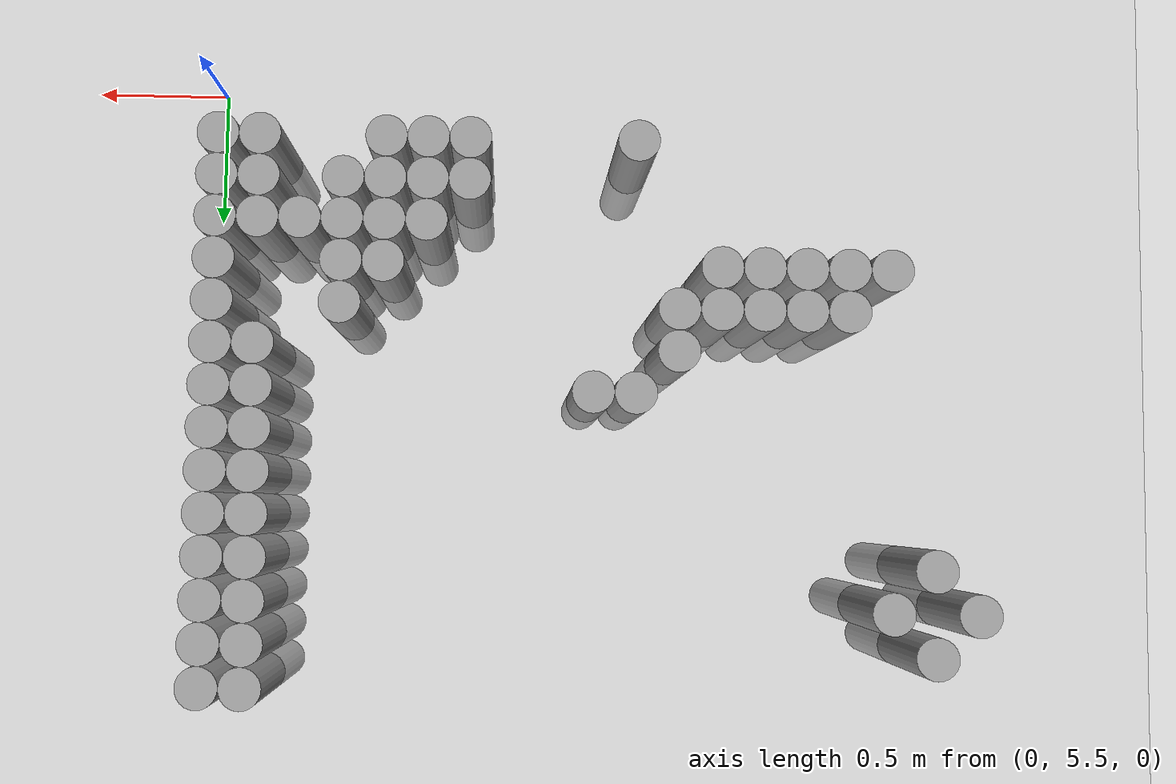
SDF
<sdf version="1.6">
 <world name="default">
  <model name="ground_plane">
   <static>1</static>
   <static>1</static>
   <link name="link">
    <collision name="collision">
     <geometry><plane><normal>0 0 1</normal><size>100 100</size></plane></geometry>
     <surface><friction><ode><mu>100</mu><mu2>50</mu2></ode></friction></surface>
    </collision>
    <visual name="visual">
     <cast_shadows>0</cast_shadows>
     <geometry><plane><normal>0 0 1</normal><size>100 100</size></plane></geometry>
     <material>
      <script><uri>file://media/materials/scripts/gazebo.material</uri><name>Gazebo/Grey</name></script>
     </material>
    </visual>
   </link>
  </model>
  <model name="unit_cylinder_162">
   <static>1</static>
   <pose>-2.775000 7.425000 0.000000 0.000000 0.000000 0.000000</pose>
   <link name="link">
    <inertial>
     <mass>1</mass>
     <inertia><ixx>0.145833</ixx><ixy>0</ixy><ixz>0</ixz><iyy>0.145833</iyy><iyz>0</iyz><izz>0.125</izz></inertia>
    </inertial>
    <collision name="collision">
     <geometry><cylinder><radius>0.075000</radius><length>1</length></cylinder></geometry>
    </collision>
    <visual name="visual">
     <geometry><cylinder><radius>0.075000</radius><length>1</length></cylinder></geometry>
     <material>
      <script><name>Gazebo/Grey</name><uri>file://media/materials/scripts/gazebo.material</uri></script>
     </material>
    </visual>
   </link>
  </model>
  <model name="unit_cylinder_165">
   <static>1</static>
   <pose>-2.625000 7.275000 0.000000 0.000000 0.000000 0.000000</pose>
   <link name="link">
    <inertial>
     <mass>1</mass>
     <inertia><ixx>0.145833</ixx><ixy>0</ixy><ixz>0</ixz><iyy>0.145833</iyy><iyz>0</iyz><izz>0.125</izz></inertia>
    </inertial>
    <collision name="collision">
     <geometry><cylinder><radius>0.075000</radius><length>1</length></cylinder></geometry>
    </collision>
    <visual name="visual">
     <geometry><cylinder><radius>0.075000</radius><length>1</length></cylinder></geometry>
     <material>
      <script><name>Gazebo/Grey</name><uri>file://media/materials/scripts/gazebo.material</uri></script>
     </material>
    </visual>
   </link>
  </model>
  <model name="unit_cylinder_166">
   <static>1</static>
   <pose>-2.625000 7.575000 0.000000 0.000000 0.000000 0.000000</pose>
   <link name="link">
    <inertial>
     <mass>1</mass>
     <inertia><ixx>0.145833</ixx><ixy>0</ixy><ixz>0</ixz><iyy>0.145833</iyy><iyz>0</iyz><izz>0.125</izz></inertia>
    </inertial>
    <collision name="collision">
     <geometry><cylinder><radius>0.075000</radius><length>1</length></cylinder></geometry>
    </collision>
    <visual name="visual">
     <geometry><cylinder><radius>0.075000</radius><length>1</length></cylinder></geometry>
     <material>
      <script><name>Gazebo/Grey</name><uri>file://media/materials/scripts/gazebo.material</uri></script>
     </material>
    </visual>
   </link>
  </model>
  <model name="unit_cylinder_170">
   <static>1</static>
   <pose>-2.475000 6.225000 0.000000 0.000000 0.000000 0.000000</pose>
   <link name="link">
    <inertial>
     <mass>1</mass>
     <inertia><ixx>0.145833</ixx><ixy>0</ixy><ixz>0</ixz><iyy>0.145833</iyy><iyz>0</iyz><izz>0.125</izz></inertia>
    </inertial>
    <collision name="collision">
     <geometry><cylinder><radius>0.075000</radius><length>1</length></cylinder></geometry>
    </collision>
    <visual name="visual">
     <geometry><cylinder><radius>0.075000</radius><length>1</length></cylinder></geometry>
     <material>
      <script><name>Gazebo/Grey</name><uri>file://media/materials/scripts/gazebo.material</uri></script>
     </material>
    </visual>
   </link>
  </model>
  <model name="unit_cylinder_171">
   <static>1</static>
   <pose>-2.475000 7.425000 0.000000 0.000000 0.000000 0.000000</pose>
   <link name="link">
    <inertial>
     <mass>1</mass>
     <inertia><ixx>0.145833</ixx><ixy>0</ixy><ixz>0</ixz><iyy>0.145833</iyy><iyz>0</iyz><izz>0.125</izz></inertia>
    </inertial>
    <collision name="collision">
     <geometry><cylinder><radius>0.075000</radius><length>1</length></cylinder></geometry>
    </collision>
    <visual name="visual">
     <geometry><cylinder><radius>0.075000</radius><length>1</length></cylinder></geometry>
     <material>
      <script><name>Gazebo/Grey</name><uri>file://media/materials/scripts/gazebo.material</uri></script>
     </material>
    </visual>
   </link>
  </model>
  <model name="unit_cylinder_174">
   <static>1</static>
   <pose>-2.325000 6.225000 0.000000 0.000000 0.000000 0.000000</pose>
   <link name="link">
    <inertial>
     <mass>1</mass>
     <inertia><ixx>0.145833</ixx><ixy>0</ixy><ixz>0</ixz><iyy>0.145833</iyy><iyz>0</iyz><izz>0.125</izz></inertia>
    </inertial>
    <collision name="collision">
     <geometry><cylinder><radius>0.075000</radius><length>1</length></cylinder></geometry>
    </collision>
    <visual name="visual">
     <geometry><cylinder><radius>0.075000</radius><length>1</length></cylinder></geometry>
     <material>
      <script><name>Gazebo/Grey</name><uri>file://media/materials/scripts/gazebo.material</uri></script>
     </material>
    </visual>
   </link>
  </model>
  <model name="unit_cylinder_175">
   <static>1</static>
   <pose>-2.325000 6.375000 0.000000 0.000000 0.000000 0.000000</pose>
   <link name="link">
    <inertial>
     <mass>1</mass>
     <inertia><ixx>0.145833</ixx><ixy>0</ixy><ixz>0</ixz><iyy>0.145833</iyy><iyz>0</iyz><izz>0.125</izz></inertia>
    </inertial>
    <collision name="collision">
     <geometry><cylinder><radius>0.075000</radius><length>1</length></cylinder></geometry>
    </collision>
    <visual name="visual">
     <geometry><cylinder><radius>0.075000</radius><length>1</length></cylinder></geometry>
     <material>
      <script><name>Gazebo/Grey</name><uri>file://media/materials/scripts/gazebo.material</uri></script>
     </material>
    </visual>
   </link>
  </model>
  <model name="unit_cylinder_176">
   <static>1</static>
   <pose>-2.175000 6.225000 0.000000 0.000000 0.000000 0.000000</pose>
   <link name="link">
    <inertial>
     <mass>1</mass>
     <inertia><ixx>0.145833</ixx><ixy>0</ixy><ixz>0</ixz><iyy>0.145833</iyy><iyz>0</iyz><izz>0.125</izz></inertia>
    </inertial>
    <collision name="collision">
     <geometry><cylinder><radius>0.075000</radius><length>1</length></cylinder></geometry>
    </collision>
    <visual name="visual">
     <geometry><cylinder><radius>0.075000</radius><length>1</length></cylinder></geometry>
     <material>
      <script><name>Gazebo/Grey</name><uri>file://media/materials/scripts/gazebo.material</uri></script>
     </material>
    </visual>
   </link>
  </model>
  <model name="unit_cylinder_177">
   <static>1</static>
   <pose>-2.175000 6.375000 0.000000 0.000000 0.000000 0.000000</pose>
   <link name="link">
    <inertial>
     <mass>1</mass>
     <inertia><ixx>0.145833</ixx><ixy>0</ixy><ixz>0</ixz><iyy>0.145833</iyy><iyz>0</iyz><izz>0.125</izz></inertia>
    </inertial>
    <collision name="collision">
     <geometry><cylinder><radius>0.075000</radius><length>1</length></cylinder></geometry>
    </collision>
    <visual name="visual">
     <geometry><cylinder><radius>0.075000</radius><length>1</length></cylinder></geometry>
     <material>
      <script><name>Gazebo/Grey</name><uri>file://media/materials/scripts/gazebo.material</uri></script>
     </material>
    </visual>
   </link>
  </model>
  <model name="unit_cylinder_180">
   <static>1</static>
   <pose>-2.025000 6.225000 0.000000 0.000000 0.000000 0.000000</pose>
   <link name="link">
    <inertial>
     <mass>1</mass>
     <inertia><ixx>0.145833</ixx><ixy>0</ixy><ixz>0</ixz><iyy>0.145833</iyy><iyz>0</iyz><izz>0.125</izz></inertia>
    </inertial>
    <collision name="collision">
     <geometry><cylinder><radius>0.075000</radius><length>1</length></cylinder></geometry>
    </collision>
    <visual name="visual">
     <geometry><cylinder><radius>0.075000</radius><length>1</length></cylinder></geometry>
     <material>
      <script><name>Gazebo/Grey</name><uri>file://media/materials/scripts/gazebo.material</uri></script>
     </material>
    </visual>
   </link>
  </model>
  <model name="unit_cylinder_181">
   <static>1</static>
   <pose>-2.025000 6.375000 0.000000 0.000000 0.000000 0.000000</pose>
   <link name="link">
    <inertial>
     <mass>1</mass>
     <inertia><ixx>0.145833</ixx><ixy>0</ixy><ixz>0</ixz><iyy>0.145833</iyy><iyz>0</iyz><izz>0.125</izz></inertia>
    </inertial>
    <collision name="collision">
     <geometry><cylinder><radius>0.075000</radius><length>1</length></cylinder></geometry>
    </collision>
    <visual name="visual">
     <geometry><cylinder><radius>0.075000</radius><length>1</length></cylinder></geometry>
     <material>
      <script><name>Gazebo/Grey</name><uri>file://media/materials/scripts/gazebo.material</uri></script>
     </material>
    </visual>
   </link>
  </model>
  <model name="unit_cylinder_183">
   <static>1</static>
   <pose>-1.875000 6.225000 0.000000 0.000000 0.000000 0.000000</pose>
   <link name="link">
    <inertial>
     <mass>1</mass>
     <inertia><ixx>0.145833</ixx><ixy>0</ixy><ixz>0</ixz><iyy>0.145833</iyy><iyz>0</iyz><izz>0.125</izz></inertia>
    </inertial>
    <collision name="collision">
     <geometry><cylinder><radius>0.075000</radius><length>1</length></cylinder></geometry>
    </collision>
    <visual name="visual">
     <geometry><cylinder><radius>0.075000</radius><length>1</length></cylinder></geometry>
     <material>
      <script><name>Gazebo/Grey</name><uri>file://media/materials/scripts/gazebo.material</uri></script>
     </material>
    </visual>
   </link>
  </model>
  <model name="unit_cylinder_184">
   <static>1</static>
   <pose>-1.875000 6.375000 0.000000 0.000000 0.000000 0.000000</pose>
   <link name="link">
    <inertial>
     <mass>1</mass>
     <inertia><ixx>0.145833</ixx><ixy>0</ixy><ixz>0</ixz><iyy>0.145833</iyy><iyz>0</iyz><izz>0.125</izz></inertia>
    </inertial>
    <collision name="collision">
     <geometry><cylinder><radius>0.075000</radius><length>1</length></cylinder></geometry>
    </collision>
    <visual name="visual">
     <geometry><cylinder><radius>0.075000</radius><length>1</length></cylinder></geometry>
     <material>
      <script><name>Gazebo/Grey</name><uri>file://media/materials/scripts/gazebo.material</uri></script>
     </material>
    </visual>
   </link>
  </model>
  <model name="unit_cylinder_185">
   <static>1</static>
   <pose>-1.725000 6.375000 0.000000 0.000000 0.000000 0.000000</pose>
   <link name="link">
    <inertial>
     <mass>1</mass>
     <inertia><ixx>0.145833</ixx><ixy>0</ixy><ixz>0</ixz><iyy>0.145833</iyy><iyz>0</iyz><izz>0.125</izz></inertia>
    </inertial>
    <collision name="collision">
     <geometry><cylinder><radius>0.075000</radius><length>1</length></cylinder></geometry>
    </collision>
    <visual name="visual">
     <geometry><cylinder><radius>0.075000</radius><length>1</length></cylinder></geometry>
     <material>
      <script><name>Gazebo/Grey</name><uri>file://media/materials/scripts/gazebo.material</uri></script>
     </material>
    </visual>
   </link>
  </model>
  <model name="unit_cylinder_186">
   <static>1</static>
   <pose>-1.725000 6.525000 0.000000 0.000000 0.000000 0.000000</pose>
   <link name="link">
    <inertial>
     <mass>1</mass>
     <inertia><ixx>0.145833</ixx><ixy>0</ixy><ixz>0</ixz><iyy>0.145833</iyy><iyz>0</iyz><izz>0.125</izz></inertia>
    </inertial>
    <collision name="collision">
     <geometry><cylinder><radius>0.075000</radius><length>1</length></cylinder></geometry>
    </collision>
    <visual name="visual">
     <geometry><cylinder><radius>0.075000</radius><length>1</length></cylinder></geometry>
     <material>
      <script><name>Gazebo/Grey</name><uri>file://media/materials/scripts/gazebo.material</uri></script>
     </material>
    </visual>
   </link>
  </model>
  <model name="unit_cylinder_188">
   <static>1</static>
   <pose>-1.575000 5.775000 0.000000 0.000000 0.000000 0.000000</pose>
   <link name="link">
    <inertial>
     <mass>1</mass>
     <inertia><ixx>0.145833</ixx><ixy>0</ixy><ixz>0</ixz><iyy>0.145833</iyy><iyz>0</iyz><izz>0.125</izz></inertia>
    </inertial>
    <collision name="collision">
     <geometry><cylinder><radius>0.075000</radius><length>1</length></cylinder></geometry>
    </collision>
    <visual name="visual">
     <geometry><cylinder><radius>0.075000</radius><length>1</length></cylinder></geometry>
     <material>
      <script><name>Gazebo/Grey</name><uri>file://media/materials/scripts/gazebo.material</uri></script>
     </material>
    </visual>
   </link>
  </model>
  <model name="unit_cylinder_189">
   <static>1</static>
   <pose>-1.575000 6.675000 0.000000 0.000000 0.000000 0.000000</pose>
   <link name="link">
    <inertial>
     <mass>1</mass>
     <inertia><ixx>0.145833</ixx><ixy>0</ixy><ixz>0</ixz><iyy>0.145833</iyy><iyz>0</iyz><izz>0.125</izz></inertia>
    </inertial>
    <collision name="collision">
     <geometry><cylinder><radius>0.075000</radius><length>1</length></cylinder></geometry>
    </collision>
    <visual name="visual">
     <geometry><cylinder><radius>0.075000</radius><length>1</length></cylinder></geometry>
     <material>
      <script><name>Gazebo/Grey</name><uri>file://media/materials/scripts/gazebo.material</uri></script>
     </material>
    </visual>
   </link>
  </model>
  <model name="unit_cylinder_194">
   <static>1</static>
   <pose>-1.425000 6.675000 0.000000 0.000000 0.000000 0.000000</pose>
   <link name="link">
    <inertial>
     <mass>1</mass>
     <inertia><ixx>0.145833</ixx><ixy>0</ixy><ixz>0</ixz><iyy>0.145833</iyy><iyz>0</iyz><izz>0.125</izz></inertia>
    </inertial>
    <collision name="collision">
     <geometry><cylinder><radius>0.075000</radius><length>1</length></cylinder></geometry>
    </collision>
    <visual name="visual">
     <geometry><cylinder><radius>0.075000</radius><length>1</length></cylinder></geometry>
     <material>
      <script><name>Gazebo/Grey</name><uri>file://media/materials/scripts/gazebo.material</uri></script>
     </material>
    </visual>
   </link>
  </model>
  <model name="unit_cylinder_198">
   <static>1</static>
   <pose>-0.975000 5.775000 0.000000 0.000000 0.000000 0.000000</pose>
   <link name="link">
    <inertial>
     <mass>1</mass>
     <inertia><ixx>0.145833</ixx><ixy>0</ixy><ixz>0</ixz><iyy>0.145833</iyy><iyz>0</iyz><izz>0.125</izz></inertia>
    </inertial>
    <collision name="collision">
     <geometry><cylinder><radius>0.075000</radius><length>1</length></cylinder></geometry>
    </collision>
    <visual name="visual">
     <geometry><cylinder><radius>0.075000</radius><length>1</length></cylinder></geometry>
     <material>
      <script><name>Gazebo/Grey</name><uri>file://media/materials/scripts/gazebo.material</uri></script>
     </material>
    </visual>
   </link>
  </model>
  <model name="unit_cylinder_199">
   <static>1</static>
   <pose>-0.975000 5.925000 0.000000 0.000000 0.000000 0.000000</pose>
   <link name="link">
    <inertial>
     <mass>1</mass>
     <inertia><ixx>0.145833</ixx><ixy>0</ixy><ixz>0</ixz><iyy>0.145833</iyy><iyz>0</iyz><izz>0.125</izz></inertia>
    </inertial>
    <collision name="collision">
     <geometry><cylinder><radius>0.075000</radius><length>1</length></cylinder></geometry>
    </collision>
    <visual name="visual">
     <geometry><cylinder><radius>0.075000</radius><length>1</length></cylinder></geometry>
     <material>
      <script><name>Gazebo/Grey</name><uri>file://media/materials/scripts/gazebo.material</uri></script>
     </material>
    </visual>
   </link>
  </model>
  <model name="unit_cylinder_205">
   <static>1</static>
   <pose>-0.825000 5.775000 0.000000 0.000000 0.000000 0.000000</pose>
   <link name="link">
    <inertial>
     <mass>1</mass>
     <inertia><ixx>0.145833</ixx><ixy>0</ixy><ixz>0</ixz><iyy>0.145833</iyy><iyz>0</iyz><izz>0.125</izz></inertia>
    </inertial>
    <collision name="collision">
     <geometry><cylinder><radius>0.075000</radius><length>1</length></cylinder></geometry>
    </collision>
    <visual name="visual">
     <geometry><cylinder><radius>0.075000</radius><length>1</length></cylinder></geometry>
     <material>
      <script><name>Gazebo/Grey</name><uri>file://media/materials/scripts/gazebo.material</uri></script>
     </material>
    </visual>
   </link>
  </model>
  <model name="unit_cylinder_206">
   <static>1</static>
   <pose>-0.825000 5.925000 0.000000 0.000000 0.000000 0.000000</pose>
   <link name="link">
    <inertial>
     <mass>1</mass>
     <inertia><ixx>0.145833</ixx><ixy>0</ixy><ixz>0</ixz><iyy>0.145833</iyy><iyz>0</iyz><izz>0.125</izz></inertia>
    </inertial>
    <collision name="collision">
     <geometry><cylinder><radius>0.075000</radius><length>1</length></cylinder></geometry>
    </collision>
    <visual name="visual">
     <geometry><cylinder><radius>0.075000</radius><length>1</length></cylinder></geometry>
     <material>
      <script><name>Gazebo/Grey</name><uri>file://media/materials/scripts/gazebo.material</uri></script>
     </material>
    </visual>
   </link>
  </model>
  <model name="unit_cylinder_207">
   <static>1</static>
   <pose>-0.825000 6.075000 0.000000 0.000000 0.000000 0.000000</pose>
   <link name="link">
    <inertial>
     <mass>1</mass>
     <inertia><ixx>0.145833</ixx><ixy>0</ixy><ixz>0</ixz><iyy>0.145833</iyy><iyz>0</iyz><izz>0.125</izz></inertia>
    </inertial>
    <collision name="collision">
     <geometry><cylinder><radius>0.075000</radius><length>1</length></cylinder></geometry>
    </collision>
    <visual name="visual">
     <geometry><cylinder><radius>0.075000</radius><length>1</length></cylinder></geometry>
     <material>
      <script><name>Gazebo/Grey</name><uri>file://media/materials/scripts/gazebo.material</uri></script>
     </material>
    </visual>
   </link>
  </model>
  <model name="unit_cylinder_215">
   <static>1</static>
   <pose>-0.675000 5.775000 0.000000 0.000000 0.000000 0.000000</pose>
   <link name="link">
    <inertial>
     <mass>1</mass>
     <inertia><ixx>0.145833</ixx><ixy>0</ixy><ixz>0</ixz><iyy>0.145833</iyy><iyz>0</iyz><izz>0.125</izz></inertia>
    </inertial>
    <collision name="collision">
     <geometry><cylinder><radius>0.075000</radius><length>1</length></cylinder></geometry>
    </collision>
    <visual name="visual">
     <geometry><cylinder><radius>0.075000</radius><length>1</length></cylinder></geometry>
     <material>
      <script><name>Gazebo/Grey</name><uri>file://media/materials/scripts/gazebo.material</uri></script>
     </material>
    </visual>
   </link>
  </model>
  <model name="unit_cylinder_216">
   <static>1</static>
   <pose>-0.675000 5.925000 0.000000 0.000000 0.000000 0.000000</pose>
   <link name="link">
    <inertial>
     <mass>1</mass>
     <inertia><ixx>0.145833</ixx><ixy>0</ixy><ixz>0</ixz><iyy>0.145833</iyy><iyz>0</iyz><izz>0.125</izz></inertia>
    </inertial>
    <collision name="collision">
     <geometry><cylinder><radius>0.075000</radius><length>1</length></cylinder></geometry>
    </collision>
    <visual name="visual">
     <geometry><cylinder><radius>0.075000</radius><length>1</length></cylinder></geometry>
     <material>
      <script><name>Gazebo/Grey</name><uri>file://media/materials/scripts/gazebo.material</uri></script>
     </material>
    </visual>
   </link>
  </model>
  <model name="unit_cylinder_217">
   <static>1</static>
   <pose>-0.675000 6.075000 0.000000 0.000000 0.000000 0.000000</pose>
   <link name="link">
    <inertial>
     <mass>1</mass>
     <inertia><ixx>0.145833</ixx><ixy>0</ixy><ixz>0</ixz><iyy>0.145833</iyy><iyz>0</iyz><izz>0.125</izz></inertia>
    </inertial>
    <collision name="collision">
     <geometry><cylinder><radius>0.075000</radius><length>1</length></cylinder></geometry>
    </collision>
    <visual name="visual">
     <geometry><cylinder><radius>0.075000</radius><length>1</length></cylinder></geometry>
     <material>
      <script><name>Gazebo/Grey</name><uri>file://media/materials/scripts/gazebo.material</uri></script>
     </material>
    </visual>
   </link>
  </model>
  <model name="unit_cylinder_218">
   <static>1</static>
   <pose>-0.675000 6.225000 0.000000 0.000000 0.000000 0.000000</pose>
   <link name="link">
    <inertial>
     <mass>1</mass>
     <inertia><ixx>0.145833</ixx><ixy>0</ixy><ixz>0</ixz><iyy>0.145833</iyy><iyz>0</iyz><izz>0.125</izz></inertia>
    </inertial>
    <collision name="collision">
     <geometry><cylinder><radius>0.075000</radius><length>1</length></cylinder></geometry>
    </collision>
    <visual name="visual">
     <geometry><cylinder><radius>0.075000</radius><length>1</length></cylinder></geometry>
     <material>
      <script><name>Gazebo/Grey</name><uri>file://media/materials/scripts/gazebo.material</uri></script>
     </material>
    </visual>
   </link>
  </model>
  <model name="unit_cylinder_224">
   <static>1</static>
   <pose>-0.525000 5.925000 0.000000 0.000000 0.000000 0.000000</pose>
   <link name="link">
    <inertial>
     <mass>1</mass>
     <inertia><ixx>0.145833</ixx><ixy>0</ixy><ixz>0</ixz><iyy>0.145833</iyy><iyz>0</iyz><izz>0.125</izz></inertia>
    </inertial>
    <collision name="collision">
     <geometry><cylinder><radius>0.075000</radius><length>1</length></cylinder></geometry>
    </collision>
    <visual name="visual">
     <geometry><cylinder><radius>0.075000</radius><length>1</length></cylinder></geometry>
     <material>
      <script><name>Gazebo/Grey</name><uri>file://media/materials/scripts/gazebo.material</uri></script>
     </material>
    </visual>
   </link>
  </model>
  <model name="unit_cylinder_225">
   <static>1</static>
   <pose>-0.525000 6.075000 0.000000 0.000000 0.000000 0.000000</pose>
   <link name="link">
    <inertial>
     <mass>1</mass>
     <inertia><ixx>0.145833</ixx><ixy>0</ixy><ixz>0</ixz><iyy>0.145833</iyy><iyz>0</iyz><izz>0.125</izz></inertia>
    </inertial>
    <collision name="collision">
     <geometry><cylinder><radius>0.075000</radius><length>1</length></cylinder></geometry>
    </collision>
    <visual name="visual">
     <geometry><cylinder><radius>0.075000</radius><length>1</length></cylinder></geometry>
     <material>
      <script><name>Gazebo/Grey</name><uri>file://media/materials/scripts/gazebo.material</uri></script>
     </material>
    </visual>
   </link>
  </model>
  <model name="unit_cylinder_226">
   <static>1</static>
   <pose>-0.525000 6.225000 0.000000 0.000000 0.000000 0.000000</pose>
   <link name="link">
    <inertial>
     <mass>1</mass>
     <inertia><ixx>0.145833</ixx><ixy>0</ixy><ixz>0</ixz><iyy>0.145833</iyy><iyz>0</iyz><izz>0.125</izz></inertia>
    </inertial>
    <collision name="collision">
     <geometry><cylinder><radius>0.075000</radius><length>1</length></cylinder></geometry>
    </collision>
    <visual name="visual">
     <geometry><cylinder><radius>0.075000</radius><length>1</length></cylinder></geometry>
     <material>
      <script><name>Gazebo/Grey</name><uri>file://media/materials/scripts/gazebo.material</uri></script>
     </material>
    </visual>
   </link>
  </model>
  <model name="unit_cylinder_227">
   <static>1</static>
   <pose>-0.525000 6.375000 0.000000 0.000000 0.000000 0.000000</pose>
   <link name="link">
    <inertial>
     <mass>1</mass>
     <inertia><ixx>0.145833</ixx><ixy>0</ixy><ixz>0</ixz><iyy>0.145833</iyy><iyz>0</iyz><izz>0.125</izz></inertia>
    </inertial>
    <collision name="collision">
     <geometry><cylinder><radius>0.075000</radius><length>1</length></cylinder></geometry>
    </collision>
    <visual name="visual">
     <geometry><cylinder><radius>0.075000</radius><length>1</length></cylinder></geometry>
     <material>
      <script><name>Gazebo/Grey</name><uri>file://media/materials/scripts/gazebo.material</uri></script>
     </material>
    </visual>
   </link>
  </model>
  <model name="unit_cylinder_234">
   <static>1</static>
   <pose>-0.375000 6.075000 0.000000 0.000000 0.000000 0.000000</pose>
   <link name="link">
    <inertial>
     <mass>1</mass>
     <inertia><ixx>0.145833</ixx><ixy>0</ixy><ixz>0</ixz><iyy>0.145833</iyy><iyz>0</iyz><izz>0.125</izz></inertia>
    </inertial>
    <collision name="collision">
     <geometry><cylinder><radius>0.075000</radius><length>1</length></cylinder></geometry>
    </collision>
    <visual name="visual">
     <geometry><cylinder><radius>0.075000</radius><length>1</length></cylinder></geometry>
     <material>
      <script><name>Gazebo/Grey</name><uri>file://media/materials/scripts/gazebo.material</uri></script>
     </material>
    </visual>
   </link>
  </model>
  <model name="unit_cylinder_242">
   <static>1</static>
   <pose>-0.225000 5.775000 0.000000 0.000000 0.000000 0.000000</pose>
   <link name="link">
    <inertial>
     <mass>1</mass>
     <inertia><ixx>0.145833</ixx><ixy>0</ixy><ixz>0</ixz><iyy>0.145833</iyy><iyz>0</iyz><izz>0.125</izz></inertia>
    </inertial>
    <collision name="collision">
     <geometry><cylinder><radius>0.075000</radius><length>1</length></cylinder></geometry>
    </collision>
    <visual name="visual">
     <geometry><cylinder><radius>0.075000</radius><length>1</length></cylinder></geometry>
     <material>
      <script><name>Gazebo/Grey</name><uri>file://media/materials/scripts/gazebo.material</uri></script>
     </material>
    </visual>
   </link>
  </model>
  <model name="unit_cylinder_243">
   <static>1</static>
   <pose>-0.225000 5.925000 0.000000 0.000000 0.000000 0.000000</pose>
   <link name="link">
    <inertial>
     <mass>1</mass>
     <inertia><ixx>0.145833</ixx><ixy>0</ixy><ixz>0</ixz><iyy>0.145833</iyy><iyz>0</iyz><izz>0.125</izz></inertia>
    </inertial>
    <collision name="collision">
     <geometry><cylinder><radius>0.075000</radius><length>1</length></cylinder></geometry>
    </collision>
    <visual name="visual">
     <geometry><cylinder><radius>0.075000</radius><length>1</length></cylinder></geometry>
     <material>
      <script><name>Gazebo/Grey</name><uri>file://media/materials/scripts/gazebo.material</uri></script>
     </material>
    </visual>
   </link>
  </model>
  <model name="unit_cylinder_244">
   <static>1</static>
   <pose>-0.225000 6.075000 0.000000 0.000000 0.000000 0.000000</pose>
   <link name="link">
    <inertial>
     <mass>1</mass>
     <inertia><ixx>0.145833</ixx><ixy>0</ixy><ixz>0</ixz><iyy>0.145833</iyy><iyz>0</iyz><izz>0.125</izz></inertia>
    </inertial>
    <collision name="collision">
     <geometry><cylinder><radius>0.075000</radius><length>1</length></cylinder></geometry>
    </collision>
    <visual name="visual">
     <geometry><cylinder><radius>0.075000</radius><length>1</length></cylinder></geometry>
     <material>
      <script><name>Gazebo/Grey</name><uri>file://media/materials/scripts/gazebo.material</uri></script>
     </material>
    </visual>
   </link>
  </model>
  <model name="unit_cylinder_245">
   <static>1</static>
   <pose>-0.225000 6.525000 0.000000 0.000000 0.000000 0.000000</pose>
   <link name="link">
    <inertial>
     <mass>1</mass>
     <inertia><ixx>0.145833</ixx><ixy>0</ixy><ixz>0</ixz><iyy>0.145833</iyy><iyz>0</iyz><izz>0.125</izz></inertia>
    </inertial>
    <collision name="collision">
     <geometry><cylinder><radius>0.075000</radius><length>1</length></cylinder></geometry>
    </collision>
    <visual name="visual">
     <geometry><cylinder><radius>0.075000</radius><length>1</length></cylinder></geometry>
     <material>
      <script><name>Gazebo/Grey</name><uri>file://media/materials/scripts/gazebo.material</uri></script>
     </material>
    </visual>
   </link>
  </model>
  <model name="unit_cylinder_246">
   <static>1</static>
   <pose>-0.225000 6.675000 0.000000 0.000000 0.000000 0.000000</pose>
   <link name="link">
    <inertial>
     <mass>1</mass>
     <inertia><ixx>0.145833</ixx><ixy>0</ixy><ixz>0</ixz><iyy>0.145833</iyy><iyz>0</iyz><izz>0.125</izz></inertia>
    </inertial>
    <collision name="collision">
     <geometry><cylinder><radius>0.075000</radius><length>1</length></cylinder></geometry>
    </collision>
    <visual name="visual">
     <geometry><cylinder><radius>0.075000</radius><length>1</length></cylinder></geometry>
     <material>
      <script><name>Gazebo/Grey</name><uri>file://media/materials/scripts/gazebo.material</uri></script>
     </material>
    </visual>
   </link>
  </model>
  <model name="unit_cylinder_247">
   <static>1</static>
   <pose>-0.225000 6.825000 0.000000 0.000000 0.000000 0.000000</pose>
   <link name="link">
    <inertial>
     <mass>1</mass>
     <inertia><ixx>0.145833</ixx><ixy>0</ixy><ixz>0</ixz><iyy>0.145833</iyy><iyz>0</iyz><izz>0.125</izz></inertia>
    </inertial>
    <collision name="collision">
     <geometry><cylinder><radius>0.075000</radius><length>1</length></cylinder></geometry>
    </collision>
    <visual name="visual">
     <geometry><cylinder><radius>0.075000</radius><length>1</length></cylinder></geometry>
     <material>
      <script><name>Gazebo/Grey</name><uri>file://media/materials/scripts/gazebo.material</uri></script>
     </material>
    </visual>
   </link>
  </model>
  <model name="unit_cylinder_248">
   <static>1</static>
   <pose>-0.225000 6.975000 0.000000 0.000000 0.000000 0.000000</pose>
   <link name="link">
    <inertial>
     <mass>1</mass>
     <inertia><ixx>0.145833</ixx><ixy>0</ixy><ixz>0</ixz><iyy>0.145833</iyy><iyz>0</iyz><izz>0.125</izz></inertia>
    </inertial>
    <collision name="collision">
     <geometry><cylinder><radius>0.075000</radius><length>1</length></cylinder></geometry>
    </collision>
    <visual name="visual">
     <geometry><cylinder><radius>0.075000</radius><length>1</length></cylinder></geometry>
     <material>
      <script><name>Gazebo/Grey</name><uri>file://media/materials/scripts/gazebo.material</uri></script>
     </material>
    </visual>
   </link>
  </model>
  <model name="unit_cylinder_249">
   <static>1</static>
   <pose>-0.225000 7.125000 0.000000 0.000000 0.000000 0.000000</pose>
   <link name="link">
    <inertial>
     <mass>1</mass>
     <inertia><ixx>0.145833</ixx><ixy>0</ixy><ixz>0</ixz><iyy>0.145833</iyy><iyz>0</iyz><izz>0.125</izz></inertia>
    </inertial>
    <collision name="collision">
     <geometry><cylinder><radius>0.075000</radius><length>1</length></cylinder></geometry>
    </collision>
    <visual name="visual">
     <geometry><cylinder><radius>0.075000</radius><length>1</length></cylinder></geometry>
     <material>
      <script><name>Gazebo/Grey</name><uri>file://media/materials/scripts/gazebo.material</uri></script>
     </material>
    </visual>
   </link>
  </model>
  <model name="unit_cylinder_250">
   <static>1</static>
   <pose>-0.225000 7.275000 0.000000 0.000000 0.000000 0.000000</pose>
   <link name="link">
    <inertial>
     <mass>1</mass>
     <inertia><ixx>0.145833</ixx><ixy>0</ixy><ixz>0</ixz><iyy>0.145833</iyy><iyz>0</iyz><izz>0.125</izz></inertia>
    </inertial>
    <collision name="collision">
     <geometry><cylinder><radius>0.075000</radius><length>1</length></cylinder></geometry>
    </collision>
    <visual name="visual">
     <geometry><cylinder><radius>0.075000</radius><length>1</length></cylinder></geometry>
     <material>
      <script><name>Gazebo/Grey</name><uri>file://media/materials/scripts/gazebo.material</uri></script>
     </material>
    </visual>
   </link>
  </model>
  <model name="unit_cylinder_251">
   <static>1</static>
   <pose>-0.225000 7.425000 0.000000 0.000000 0.000000 0.000000</pose>
   <link name="link">
    <inertial>
     <mass>1</mass>
     <inertia><ixx>0.145833</ixx><ixy>0</ixy><ixz>0</ixz><iyy>0.145833</iyy><iyz>0</iyz><izz>0.125</izz></inertia>
    </inertial>
    <collision name="collision">
     <geometry><cylinder><radius>0.075000</radius><length>1</length></cylinder></geometry>
    </collision>
    <visual name="visual">
     <geometry><cylinder><radius>0.075000</radius><length>1</length></cylinder></geometry>
     <material>
      <script><name>Gazebo/Grey</name><uri>file://media/materials/scripts/gazebo.material</uri></script>
     </material>
    </visual>
   </link>
  </model>
  <model name="unit_cylinder_252">
   <static>1</static>
   <pose>-0.225000 7.575000 0.000000 0.000000 0.000000 0.000000</pose>
   <link name="link">
    <inertial>
     <mass>1</mass>
     <inertia><ixx>0.145833</ixx><ixy>0</ixy><ixz>0</ixz><iyy>0.145833</iyy><iyz>0</iyz><izz>0.125</izz></inertia>
    </inertial>
    <collision name="collision">
     <geometry><cylinder><radius>0.075000</radius><length>1</length></cylinder></geometry>
    </collision>
    <visual name="visual">
     <geometry><cylinder><radius>0.075000</radius><length>1</length></cylinder></geometry>
     <material>
      <script><name>Gazebo/Grey</name><uri>file://media/materials/scripts/gazebo.material</uri></script>
     </material>
    </visual>
   </link>
  </model>
  <model name="unit_cylinder_253">
   <static>1</static>
   <pose>-0.225000 7.725000 0.000000 0.000000 0.000000 0.000000</pose>
   <link name="link">
    <inertial>
     <mass>1</mass>
     <inertia><ixx>0.145833</ixx><ixy>0</ixy><ixz>0</ixz><iyy>0.145833</iyy><iyz>0</iyz><izz>0.125</izz></inertia>
    </inertial>
    <collision name="collision">
     <geometry><cylinder><radius>0.075000</radius><length>1</length></cylinder></geometry>
    </collision>
    <visual name="visual">
     <geometry><cylinder><radius>0.075000</radius><length>1</length></cylinder></geometry>
     <material>
      <script><name>Gazebo/Grey</name><uri>file://media/materials/scripts/gazebo.material</uri></script>
     </material>
    </visual>
   </link>
  </model>
  <model name="unit_cylinder_264">
   <static>1</static>
   <pose>-0.075000 5.775000 0.000000 0.000000 0.000000 0.000000</pose>
   <link name="link">
    <inertial>
     <mass>1</mass>
     <inertia><ixx>0.145833</ixx><ixy>0</ixy><ixz>0</ixz><iyy>0.145833</iyy><iyz>0</iyz><izz>0.125</izz></inertia>
    </inertial>
    <collision name="collision">
     <geometry><cylinder><radius>0.075000</radius><length>1</length></cylinder></geometry>
    </collision>
    <visual name="visual">
     <geometry><cylinder><radius>0.075000</radius><length>1</length></cylinder></geometry>
     <material>
      <script><name>Gazebo/Grey</name><uri>file://media/materials/scripts/gazebo.material</uri></script>
     </material>
    </visual>
   </link>
  </model>
  <model name="unit_cylinder_265">
   <static>1</static>
   <pose>-0.075000 5.925000 0.000000 0.000000 0.000000 0.000000</pose>
   <link name="link">
    <inertial>
     <mass>1</mass>
     <inertia><ixx>0.145833</ixx><ixy>0</ixy><ixz>0</ixz><iyy>0.145833</iyy><iyz>0</iyz><izz>0.125</izz></inertia>
    </inertial>
    <collision name="collision">
     <geometry><cylinder><radius>0.075000</radius><length>1</length></cylinder></geometry>
    </collision>
    <visual name="visual">
     <geometry><cylinder><radius>0.075000</radius><length>1</length></cylinder></geometry>
     <material>
      <script><name>Gazebo/Grey</name><uri>file://media/materials/scripts/gazebo.material</uri></script>
     </material>
    </visual>
   </link>
  </model>
  <model name="unit_cylinder_266">
   <static>1</static>
   <pose>-0.075000 6.075000 0.000000 0.000000 0.000000 0.000000</pose>
   <link name="link">
    <inertial>
     <mass>1</mass>
     <inertia><ixx>0.145833</ixx><ixy>0</ixy><ixz>0</ixz><iyy>0.145833</iyy><iyz>0</iyz><izz>0.125</izz></inertia>
    </inertial>
    <collision name="collision">
     <geometry><cylinder><radius>0.075000</radius><length>1</length></cylinder></geometry>
    </collision>
    <visual name="visual">
     <geometry><cylinder><radius>0.075000</radius><length>1</length></cylinder></geometry>
     <material>
      <script><name>Gazebo/Grey</name><uri>file://media/materials/scripts/gazebo.material</uri></script>
     </material>
    </visual>
   </link>
  </model>
  <model name="unit_cylinder_267">
   <static>1</static>
   <pose>-0.075000 6.225000 0.000000 0.000000 0.000000 0.000000</pose>
   <link name="link">
    <inertial>
     <mass>1</mass>
     <inertia><ixx>0.145833</ixx><ixy>0</ixy><ixz>0</ixz><iyy>0.145833</iyy><iyz>0</iyz><izz>0.125</izz></inertia>
    </inertial>
    <collision name="collision">
     <geometry><cylinder><radius>0.075000</radius><length>1</length></cylinder></geometry>
    </collision>
    <visual name="visual">
     <geometry><cylinder><radius>0.075000</radius><length>1</length></cylinder></geometry>
     <material>
      <script><name>Gazebo/Grey</name><uri>file://media/materials/scripts/gazebo.material</uri></script>
     </material>
    </visual>
   </link>
  </model>
  <model name="unit_cylinder_268">
   <static>1</static>
   <pose>-0.075000 6.375000 0.000000 0.000000 0.000000 0.000000</pose>
   <link name="link">
    <inertial>
     <mass>1</mass>
     <inertia><ixx>0.145833</ixx><ixy>0</ixy><ixz>0</ixz><iyy>0.145833</iyy><iyz>0</iyz><izz>0.125</izz></inertia>
    </inertial>
    <collision name="collision">
     <geometry><cylinder><radius>0.075000</radius><length>1</length></cylinder></geometry>
    </collision>
    <visual name="visual">
     <geometry><cylinder><radius>0.075000</radius><length>1</length></cylinder></geometry>
     <material>
      <script><name>Gazebo/Grey</name><uri>file://media/materials/scripts/gazebo.material</uri></script>
     </material>
    </visual>
   </link>
  </model>
  <model name="unit_cylinder_269">
   <static>1</static>
   <pose>-0.075000 6.525000 0.000000 0.000000 0.000000 0.000000</pose>
   <link name="link">
    <inertial>
     <mass>1</mass>
     <inertia><ixx>0.145833</ixx><ixy>0</ixy><ixz>0</ixz><iyy>0.145833</iyy><iyz>0</iyz><izz>0.125</izz></inertia>
    </inertial>
    <collision name="collision">
     <geometry><cylinder><radius>0.075000</radius><length>1</length></cylinder></geometry>
    </collision>
    <visual name="visual">
     <geometry><cylinder><radius>0.075000</radius><length>1</length></cylinder></geometry>
     <material>
      <script><name>Gazebo/Grey</name><uri>file://media/materials/scripts/gazebo.material</uri></script>
     </material>
    </visual>
   </link>
  </model>
  <model name="unit_cylinder_270">
   <static>1</static>
   <pose>-0.075000 6.675000 0.000000 0.000000 0.000000 0.000000</pose>
   <link name="link">
    <inertial>
     <mass>1</mass>
     <inertia><ixx>0.145833</ixx><ixy>0</ixy><ixz>0</ixz><iyy>0.145833</iyy><iyz>0</iyz><izz>0.125</izz></inertia>
    </inertial>
    <collision name="collision">
     <geometry><cylinder><radius>0.075000</radius><length>1</length></cylinder></geometry>
    </collision>
    <visual name="visual">
     <geometry><cylinder><radius>0.075000</radius><length>1</length></cylinder></geometry>
     <material>
      <script><name>Gazebo/Grey</name><uri>file://media/materials/scripts/gazebo.material</uri></script>
     </material>
    </visual>
   </link>
  </model>
  <model name="unit_cylinder_271">
   <static>1</static>
   <pose>-0.075000 6.825000 0.000000 0.000000 0.000000 0.000000</pose>
   <link name="link">
    <inertial>
     <mass>1</mass>
     <inertia><ixx>0.145833</ixx><ixy>0</ixy><ixz>0</ixz><iyy>0.145833</iyy><iyz>0</iyz><izz>0.125</izz></inertia>
    </inertial>
    <collision name="collision">
     <geometry><cylinder><radius>0.075000</radius><length>1</length></cylinder></geometry>
    </collision>
    <visual name="visual">
     <geometry><cylinder><radius>0.075000</radius><length>1</length></cylinder></geometry>
     <material>
      <script><name>Gazebo/Grey</name><uri>file://media/materials/scripts/gazebo.material</uri></script>
     </material>
    </visual>
   </link>
  </model>
  <model name="unit_cylinder_272">
   <static>1</static>
   <pose>-0.075000 6.975000 0.000000 0.000000 0.000000 0.000000</pose>
   <link name="link">
    <inertial>
     <mass>1</mass>
     <inertia><ixx>0.145833</ixx><ixy>0</ixy><ixz>0</ixz><iyy>0.145833</iyy><iyz>0</iyz><izz>0.125</izz></inertia>
    </inertial>
    <collision name="collision">
     <geometry><cylinder><radius>0.075000</radius><length>1</length></cylinder></geometry>
    </collision>
    <visual name="visual">
     <geometry><cylinder><radius>0.075000</radius><length>1</length></cylinder></geometry>
     <material>
      <script><name>Gazebo/Grey</name><uri>file://media/materials/scripts/gazebo.material</uri></script>
     </material>
    </visual>
   </link>
  </model>
  <model name="unit_cylinder_273">
   <static>1</static>
   <pose>-0.075000 7.125000 0.000000 0.000000 0.000000 0.000000</pose>
   <link name="link">
    <inertial>
     <mass>1</mass>
     <inertia><ixx>0.145833</ixx><ixy>0</ixy><ixz>0</ixz><iyy>0.145833</iyy><iyz>0</iyz><izz>0.125</izz></inertia>
    </inertial>
    <collision name="collision">
     <geometry><cylinder><radius>0.075000</radius><length>1</length></cylinder></geometry>
    </collision>
    <visual name="visual">
     <geometry><cylinder><radius>0.075000</radius><length>1</length></cylinder></geometry>
     <material>
      <script><name>Gazebo/Grey</name><uri>file://media/materials/scripts/gazebo.material</uri></script>
     </material>
    </visual>
   </link>
  </model>
  <model name="unit_cylinder_274">
   <static>1</static>
   <pose>-0.075000 7.275000 0.000000 0.000000 0.000000 0.000000</pose>
   <link name="link">
    <inertial>
     <mass>1</mass>
     <inertia><ixx>0.145833</ixx><ixy>0</ixy><ixz>0</ixz><iyy>0.145833</iyy><iyz>0</iyz><izz>0.125</izz></inertia>
    </inertial>
    <collision name="collision">
     <geometry><cylinder><radius>0.075000</radius><length>1</length></cylinder></geometry>
    </collision>
    <visual name="visual">
     <geometry><cylinder><radius>0.075000</radius><length>1</length></cylinder></geometry>
     <material>
      <script><name>Gazebo/Grey</name><uri>file://media/materials/scripts/gazebo.material</uri></script>
     </material>
    </visual>
   </link>
  </model>
  <model name="unit_cylinder_275">
   <static>1</static>
   <pose>-0.075000 7.425000 0.000000 0.000000 0.000000 0.000000</pose>
   <link name="link">
    <inertial>
     <mass>1</mass>
     <inertia><ixx>0.145833</ixx><ixy>0</ixy><ixz>0</ixz><iyy>0.145833</iyy><iyz>0</iyz><izz>0.125</izz></inertia>
    </inertial>
    <collision name="collision">
     <geometry><cylinder><radius>0.075000</radius><length>1</length></cylinder></geometry>
    </collision>
    <visual name="visual">
     <geometry><cylinder><radius>0.075000</radius><length>1</length></cylinder></geometry>
     <material>
      <script><name>Gazebo/Grey</name><uri>file://media/materials/scripts/gazebo.material</uri></script>
     </material>
    </visual>
   </link>
  </model>
  <model name="unit_cylinder_276">
   <static>1</static>
   <pose>-0.075000 7.575000 0.000000 0.000000 0.000000 0.000000</pose>
   <link name="link">
    <inertial>
     <mass>1</mass>
     <inertia><ixx>0.145833</ixx><ixy>0</ixy><ixz>0</ixz><iyy>0.145833</iyy><iyz>0</iyz><izz>0.125</izz></inertia>
    </inertial>
    <collision name="collision">
     <geometry><cylinder><radius>0.075000</radius><length>1</length></cylinder></geometry>
    </collision>
    <visual name="visual">
     <geometry><cylinder><radius>0.075000</radius><length>1</length></cylinder></geometry>
     <material>
      <script><name>Gazebo/Grey</name><uri>file://media/materials/scripts/gazebo.material</uri></script>
     </material>
    </visual>
   </link>
  </model>
  <model name="unit_cylinder_277">
   <static>1</static>
   <pose>-0.075000 7.725000 0.000000 0.000000 0.000000 0.000000</pose>
   <link name="link">
    <inertial>
     <mass>1</mass>
     <inertia><ixx>0.145833</ixx><ixy>0</ixy><ixz>0</ixz><iyy>0.145833</iyy><iyz>0</iyz><izz>0.125</izz></inertia>
    </inertial>
    <collision name="collision">
     <geometry><cylinder><radius>0.075000</radius><length>1</length></cylinder></geometry>
    </collision>
    <visual name="visual">
     <geometry><cylinder><radius>0.075000</radius><length>1</length></cylinder></geometry>
     <material>
      <script><name>Gazebo/Grey</name><uri>file://media/materials/scripts/gazebo.material</uri></script>
     </material>
    </visual>
   </link>
  </model>
 </world>
</sdf>
